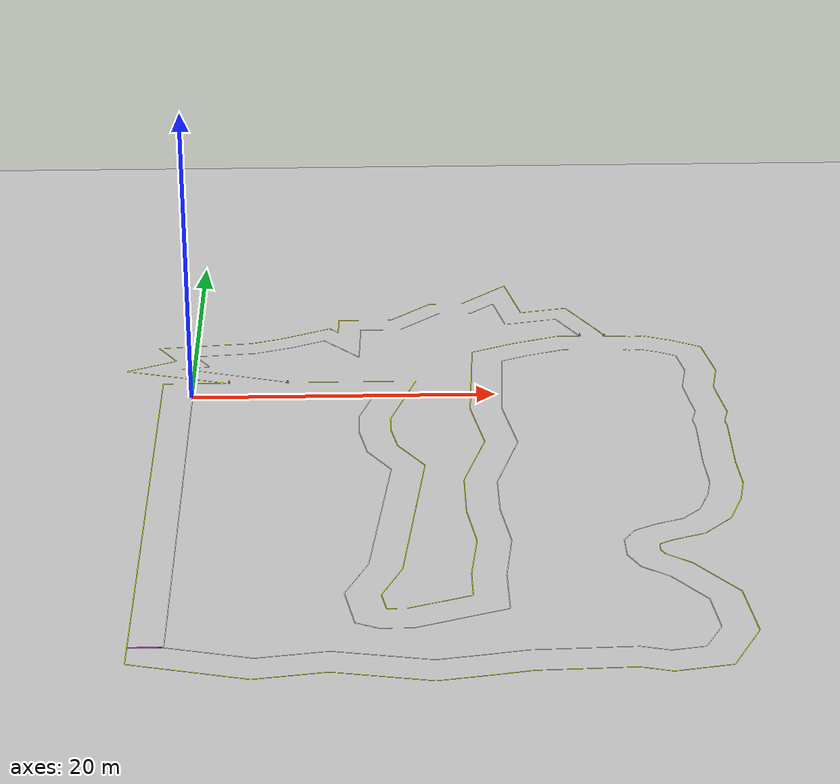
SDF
<?xml version="1.0" ?>
<sdf version="1.6">
  <world name="default">
    <scene>
      <sky>
        <clouds>
          <speed>12</speed>
        </clouds>
      </sky>
      <ambient>1.0 1.0 1.0 1.0</ambient>
      <shadows>true</shadows>
    </scene>

    <!-- A global light source -->
    <include>
      <uri>model://urdf/models/sun</uri>
    </include>
    <include>
      <name>track</name>
      <uri>model://urdf/models/circuit_race_track</uri>
      <pose>0 -30 0.001 0 0 0</pose>
    </include>
    <include>
      <name>asphalt_ground</name>
      <uri>model://urdf/models/asphalt_ground</uri>
      <pose>0 0 0 0 0 0</pose>
    </include>
  </world>
</sdf>

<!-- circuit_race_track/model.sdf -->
<sdf version="1.5">
  <model name="track">
    <static>true</static>
    <link name="link">
      <collision name="collision">
        <geometry>
          <mesh>
            <uri>model://urdf/assets/CircuitRaceTrack.dae</uri>
            <scale>1.0 1.0 1.0</scale>
          </mesh>
        </geometry>
        <surface>
          <friction>
            <ode>
              <mu>100</mu>
              <mu2>50</mu2>
            </ode>
          </friction>
        </surface>
      </collision>
      <visual name="visual">
        <cast_shadows>false</cast_shadows>
        <geometry>
          <mesh>
            <uri>model://urdf/assets/CircuitRaceTrack.dae</uri>
            <scale>1.0 1.0 1.0</scale>
          </mesh>
        </geometry>
      </visual>
    </link>
  </model>
</sdf>

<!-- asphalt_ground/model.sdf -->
<sdf version="1.4">
<model name="asphalt_ground">
  <static>true</static>
    <link name="link">
      <collision name="collision">
        <geometry>
          <plane>
            <normal>0 0 1</normal>
            <size>100 100</size>
          </plane>
        </geometry>
        <surface>
          <friction>
            <ode>
              <mu>100</mu>
              <mu2>50</mu2>
            </ode>
          </friction>
        </surface>
      </collision>
      <visual name="visual">
        <cast_shadows>false</cast_shadows>
        <geometry>
          <plane>
            <normal>0 0 1</normal>
            <size>100 100</size>
          </plane>
        </geometry>
        <material>
          <script>
            <uri>model://urdf/models/asphalt_ground/materials/scripts</uri>
            <uri>model://urdf/models/asphalt_ground/materials/textures</uri>
            <name>Asphalt/Image</name>
          </script>
        </material>
      </visual>
    </link>
  </model>
</sdf>
